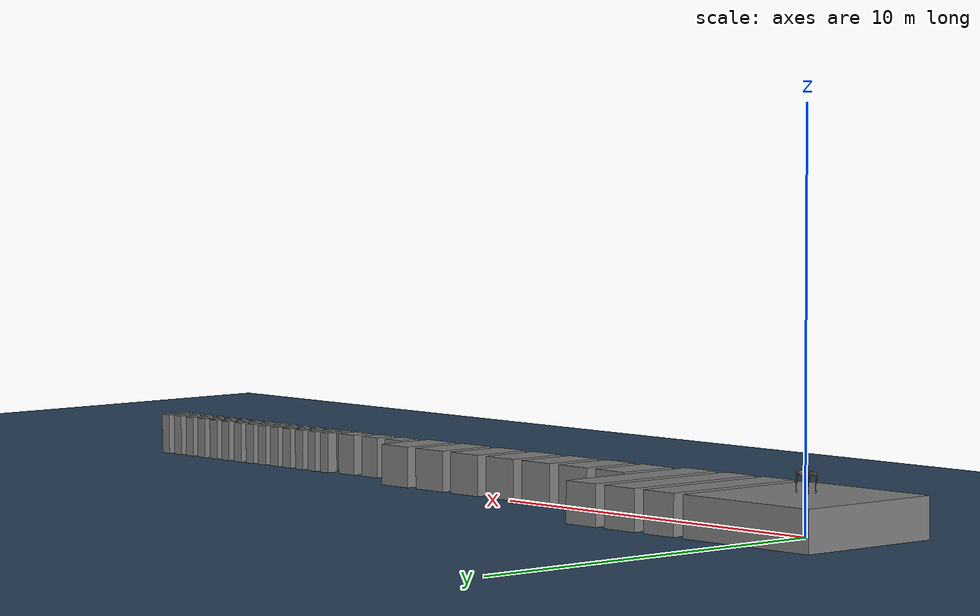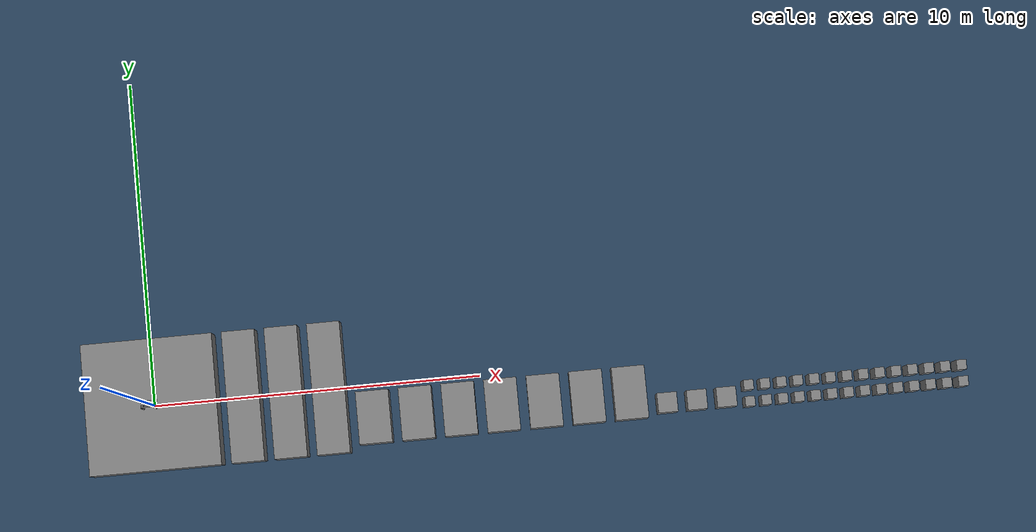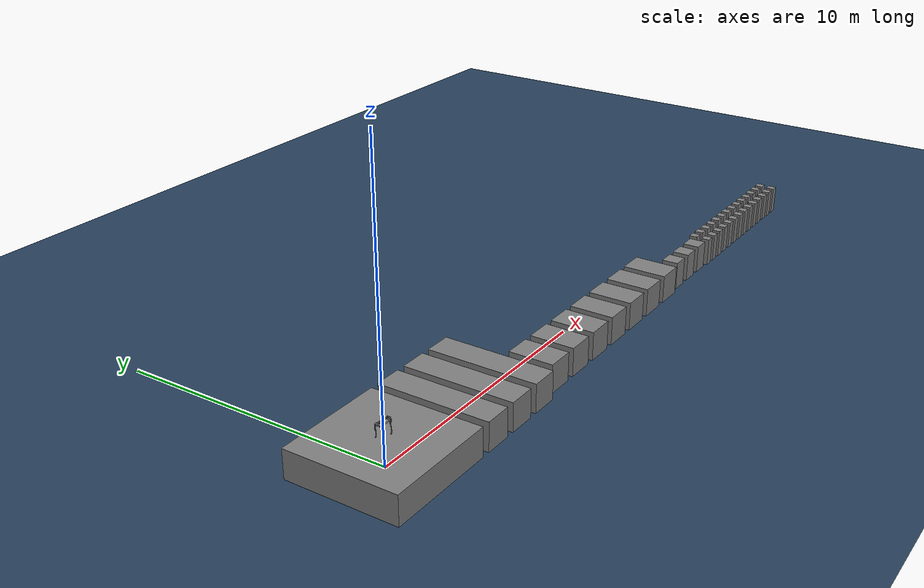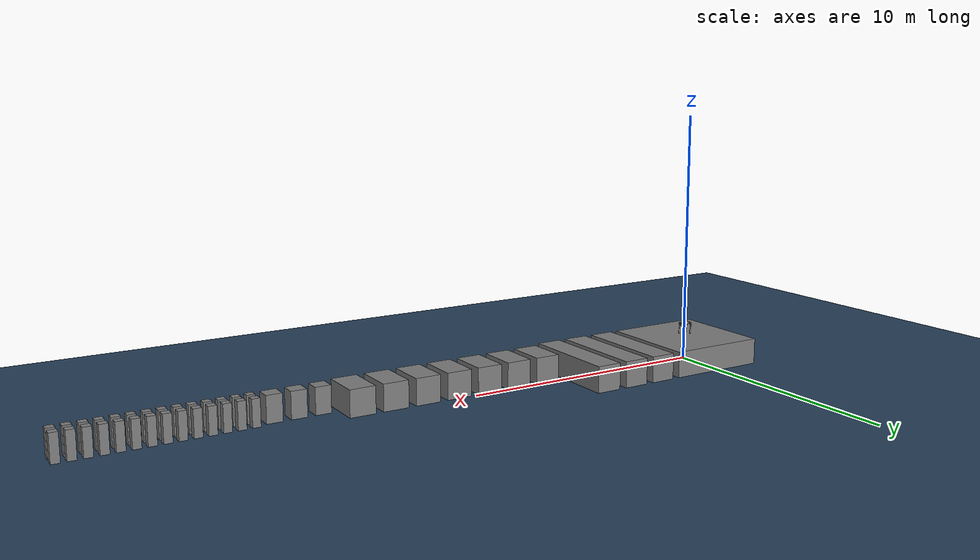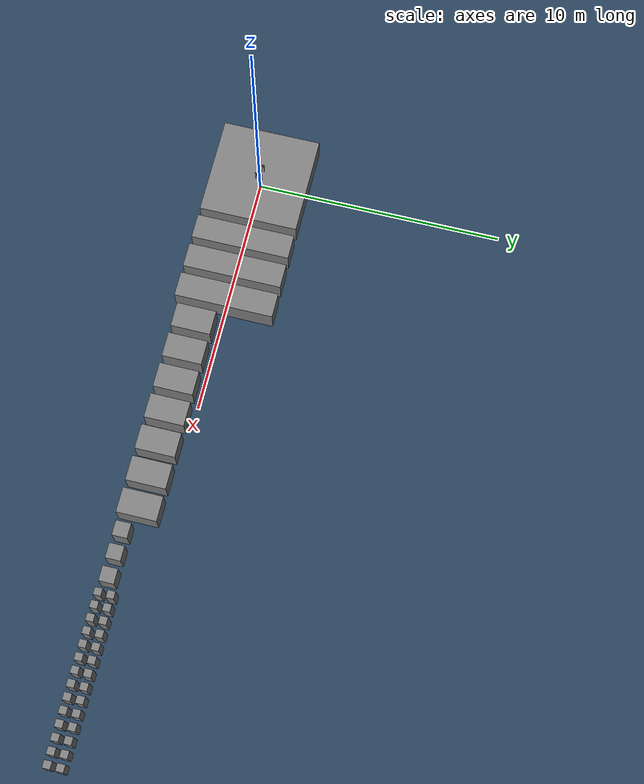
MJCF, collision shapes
<mujoco model="go1 scene">
  <include file="go1.xml" />

  <statistic center="0 0 0.1" extent="0.8" />

  <visual>
    <headlight diffuse="0.6 0.6 0.6" ambient="0.3 0.3 0.3" specular="0 0 0" />
    <rgba haze="0.15 0.25 0.35 1" />
    <global azimuth="-130" elevation="-20" />
  </visual>

  <asset>
    <texture type="skybox" builtin="gradient" rgb1="0.3 0.5 0.7" rgb2="0 0 0" width="512" height="3072" />
    <texture type="2d" name="groundplane" builtin="checker" mark="edge" rgb1="0.2 0.3 0.4" rgb2="0.1 0.2 0.3" markrgb="0.8 0.8 0.8" width="300" height="300" />
    <material name="groundplane" texture="groundplane" texuniform="true" texrepeat="5 5" reflectance="0.2" />
  <hfield name="perlin_hfield" size="5.0 5.0 0.6 0.6" file="../height_field.png" />
  <hfield name="image_hfield" size="1.0 1.0 0.02 0.1" file="../unitree_hfield.png" /></asset>

  <worldbody>
    <light pos="0 0 1.5" dir="0 0 -1" directional="true" />
    <geom name="floor" size="0 0 0.05" type="plane" material="groundplane" />
    <geom pos="0.0 0.0 0.0" type="box" size="2.0 2.0 1.0" quat="1.0 0.0 0.0 0.0" />
    <geom pos="2.8 0.0 0.0" type="box" size="0.5 2.0 1.0" quat="1.0 0.0 0.0 0.0" />
    <geom pos="4.1 0.0 0.0" type="box" size="0.5 2.0 1.0" quat="1.0 0.0 0.0 0.0" />
    <geom pos="5.4 0.0 0.0" type="box" size="0.5 2.0 1.0" quat="1.0 0.0 0.0 0.0" />
    <geom pos="6.7 -1.0 0.0" type="box" size="0.5 0.8 1.0" quat="1.0 0.0 0.0 0.0" />
    <geom pos="8.0 -1.0 0.0" type="box" size="0.5 0.8 1.0" quat="1.0 0.0 0.0 0.0" />
    <geom pos="9.3 -1.0 0.0" type="box" size="0.5 0.8 1.0" quat="1.0 0.0 0.0 0.0" />
    <geom pos="10.6 -1.0 0.0" type="box" size="0.5 0.8 1.0" quat="1.0 0.0 0.0 0.0" />
    <geom pos="11.9 -1.0 0.0" type="box" size="0.5 0.8 1.0" quat="1.0 0.0 0.0 0.0" />
    <geom pos="13.2 -1.0 0.0" type="box" size="0.5 0.8 1.0" quat="1.0 0.0 0.0 0.0" />
    <geom pos="14.5 -1.0 0.0" type="box" size="0.5 0.8 1.0" quat="1.0 0.0 0.0 0.0" />
    <geom pos="15.6 -1.4 0.0" type="box" size="0.3 0.3 1.0" quat="1.0 0.0 0.0 0.0" />
    <geom pos="16.5 -1.4 0.0" type="box" size="0.3 0.3 1.0" quat="1.0 0.0 0.0 0.0" />
    <geom pos="17.4 -1.4 0.0" type="box" size="0.3 0.3 1.0" quat="1.0 0.0 0.0 0.0" />
    <geom pos="18.1 -1.1 0.0" type="box" size="0.15 0.15 1.0" quat="1.0 0.0 0.0 0.0" />
    <geom pos="18.1 -1.6 0.0" type="box" size="0.15 0.15 1.0" quat="1.0 0.0 0.0 0.0" />
    <geom pos="18.6 -1.1 0.0" type="box" size="0.15 0.15 1.0" quat="1.0 0.0 0.0 0.0" />
    <geom pos="18.6 -1.6 0.0" type="box" size="0.15 0.15 1.0" quat="1.0 0.0 0.0 0.0" />
    <geom pos="19.1 -1.1 0.0" type="box" size="0.15 0.15 1.0" quat="1.0 0.0 0.0 0.0" />
    <geom pos="19.1 -1.6 0.0" type="box" size="0.15 0.15 1.0" quat="1.0 0.0 0.0 0.0" />
    <geom pos="19.6 -1.1 0.0" type="box" size="0.15 0.15 1.0" quat="1.0 0.0 0.0 0.0" />
    <geom pos="19.6 -1.6 0.0" type="box" size="0.15 0.15 1.0" quat="1.0 0.0 0.0 0.0" />
    <geom pos="20.1 -1.1 0.0" type="box" size="0.15 0.15 1.0" quat="1.0 0.0 0.0 0.0" />
    <geom pos="20.1 -1.6 0.0" type="box" size="0.15 0.15 1.0" quat="1.0 0.0 0.0 0.0" />
    <geom pos="20.6 -1.1 0.0" type="box" size="0.15 0.15 1.0" quat="1.0 0.0 0.0 0.0" />
    <geom pos="20.6 -1.6 0.0" type="box" size="0.15 0.15 1.0" quat="1.0 0.0 0.0 0.0" />
    <geom pos="21.1 -1.1 0.0" type="box" size="0.15 0.15 1.0" quat="1.0 0.0 0.0 0.0" />
    <geom pos="21.1 -1.6 0.0" type="box" size="0.15 0.15 1.0" quat="1.0 0.0 0.0 0.0" />
    <geom pos="21.6 -1.1 0.0" type="box" size="0.15 0.15 1.0" quat="1.0 0.0 0.0 0.0" />
    <geom pos="21.6 -1.6 0.0" type="box" size="0.15 0.15 1.0" quat="1.0 0.0 0.0 0.0" />
    <geom pos="22.1 -1.1 0.0" type="box" size="0.15 0.15 1.0" quat="1.0 0.0 0.0 0.0" />
    <geom pos="22.1 -1.6 0.0" type="box" size="0.15 0.15 1.0" quat="1.0 0.0 0.0 0.0" />
    <geom pos="22.6 -1.1 0.0" type="box" size="0.15 0.15 1.0" quat="1.0 0.0 0.0 0.0" />
    <geom pos="22.6 -1.6 0.0" type="box" size="0.15 0.15 1.0" quat="1.0 0.0 0.0 0.0" />
    <geom pos="23.1 -1.1 0.0" type="box" size="0.15 0.15 1.0" quat="1.0 0.0 0.0 0.0" />
    <geom pos="23.1 -1.6 0.0" type="box" size="0.15 0.15 1.0" quat="1.0 0.0 0.0 0.0" />
    <geom pos="23.6 -1.1 0.0" type="box" size="0.15 0.15 1.0" quat="1.0 0.0 0.0 0.0" />
    <geom pos="23.6 -1.6 0.0" type="box" size="0.15 0.15 1.0" quat="1.0 0.0 0.0 0.0" />
    <geom pos="24.1 -1.1 0.0" type="box" size="0.15 0.15 1.0" quat="1.0 0.0 0.0 0.0" />
    <geom pos="24.1 -1.6 0.0" type="box" size="0.15 0.15 1.0" quat="1.0 0.0 0.0 0.0" />
    <geom pos="24.6 -1.1 0.0" type="box" size="0.15 0.15 1.0" quat="1.0 0.0 0.0 0.0" />
    <geom pos="24.6 -1.6 0.0" type="box" size="0.15 0.15 1.0" quat="1.0 0.0 0.0 0.0" />

  </worldbody>
</mujoco>

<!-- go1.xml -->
<mujoco model="go1">
  <compiler angle="radian" meshdir="assets" autolimits="true"/>

  <option cone="elliptic" impratio="100"/>

  <extension>
    <!-- 啟用 ray caster plugin -->
    <plugin plugin="mujoco.sensor.ray_caster"/>
  </extension>

  <default>
    <default class="go1">
      <geom friction="0.4" margin="0.001" condim="1"/>
      <joint axis="0 1 0" damping="2" armature="0.01" frictionloss="0.2"/>
      <motor ctrlrange="-23.7 23.7"/>
      <default class="abduction">
        <joint axis="1 0 0" damping="1" range="-0.863 0.863"/>
      </default>
      <default class="hip">
        <joint range="-0.686 4.501"/>
      </default>
      <default class="knee">
        <joint range="-2.818 -0.888"/>
        <motor ctrlrange="-45.43 45.43"/>
      </default>
      <default class="visual">
        <geom type="mesh" contype="0" conaffinity="0" group="2" material="dark"/>
      </default>
      <default class="collision">
        <geom group="3" type="capsule"/>
        <default class="hip_left1">
          <geom size="0.046 0.02" pos="0 0.045 0" quat="1 1 0 0" type="cylinder"/>
        </default>
        <default class="hip_left2">
          <geom size="0.031 0.02" pos="0 0.065 0" quat="1 1 0 0" type="cylinder"/>
        </default>
        <default class="hip_left3">
          <geom size="0.046 0.02" quat="1 1 0 0" type="cylinder"/>
        </default>
        <default class="hip_right1">
          <geom size="0.046 0.02" pos="0 -0.045 0" quat="1 1 0 0" type="cylinder"/>
        </default>
        <default class="hip_right2">
          <geom size="0.031 0.02" pos="0 -0.065 0" quat="1 1 0 0" type="cylinder"/>
        </default>
        <default class="hip_right3">
          <geom size="0.046 0.02" quat="1 1 0 0" type="cylinder"/>
        </default>
        <default class="thigh1">
          <geom size="0.015" fromto="-0.02 0 0 -0.02 0 -0.16"/>
        </default>
        <default class="thigh2">
          <geom size="0.015" fromto="0 0 0 -0.02 0 -0.1"/>
        </default>
        <default class="thigh3">
          <geom size="0.015" fromto="-0.02 0 -0.16 0 0 -0.2"/>
        </default>
        <default class="calf1">
          <geom size="0.01" fromto="0 0 0 0.02 0 -0.13"/>
        </default>
        <default class="calf2">
          <geom size="0.01" fromto="0.02 0 -0.13 0 0 -0.2"/>
        </default>
        <default class="foot">
          <geom type="sphere" size="0.023" pos="0 0 -0.213" priority="1" condim="6"
            friction="0.4 0.02 0.01"/>
        </default>
      </default>
    </default>
  </default>

  <asset>
    <material name="dark" rgba="0.2 0.2 0.2 1"/>
    <mesh class="go1" file="trunk.stl"/>
    <mesh class="go1" file="hip.stl"/>
    <mesh class="go1" file="thigh_mirror.stl"/>
    <mesh class="go1" file="calf.stl"/>
    <mesh class="go1" file="thigh.stl"/>
  </asset>

  <worldbody>
    <body name="base_link" pos="0 0 1.5" childclass="go1">
      <camera name="tracking" mode="trackcom" pos="0 -1 0.8" xyaxes="1 0 0 0 1 1"/>
      <site name="head" pos="0.3 0 0" rgba="1 0 0 1" size="0.02" group="5"/>
      <inertial pos="0.0223 0.002 -0.0005" quat="-0.00342088 0.705204 0.000106698 0.708996" mass="5.204"
        diaginertia="0.0716565 0.0630105 0.0168101"/>
      <freejoint/>
      <geom class="visual" mesh="trunk"/>
      <geom class="collision" size="0.125 0.04 0.057" type="box"/>
      <geom class="collision" quat="1 0 1 0" pos="0 -0.04 0" size="0.058 0.125" type="cylinder"/>
      <geom class="collision" quat="1 0 1 0" pos="0 +0.04 0" size="0.058 0.125" type="cylinder"/>
      <geom class="collision" pos="0.25 0 0" size="0.005 0.06 0.05" type="box"/>
      <geom class="collision" pos="0.25 0.06 -0.01" size="0.009 0.035"/>
      <geom class="collision" pos="0.25 -0.06 -0.01" size="0.009 0.035"/>
      <geom class="collision" pos="0.25 0 -0.05" size="0.01 0.06" quat="1 1 0 0"/>
      <geom class="collision" pos="0.255 0 0.0355" size="0.021 0.052" quat="1 1 0 0"/>
      <camera name="height_cam" pos="0 0 0" quat="1 0 0 0"/>
      <site name="imu" pos="0 0 0"/>
      <body name="FR_hip" pos="0.1881 -0.04675 0">
        <inertial pos="-0.0049166 0.00762615 -8.865e-05" quat="0.507341 0.514169 0.495027 0.482891" mass="0.68"
          diaginertia="0.000734064 0.000468438 0.000398719"/>
        <joint class="abduction" name="FR_hip_joint"/>
        <geom class="visual" mesh="hip" quat="1 0 0 0"/>
        <geom class="hip_right1"/>
        <geom class="hip_right2"/>
        <body name="FR_thigh" pos="0 -0.08 0">
          <inertial pos="-0.00304722 0.019315 -0.0305004" quat="0.65243 -0.0272313 0.0775126 0.753383" mass="1.009"
            diaginertia="0.00478717 0.00460903 0.000709268"/>
          <joint class="hip" name="FR_thigh_joint"/>
          <geom class="visual" mesh="thigh_mirror"/>
          <geom class="thigh1"/>
          <geom class="thigh2"/>
          <geom class="thigh3"/>
          <body name="FR_calf" pos="0 0 -0.213">
            <inertial pos="0.00429862 0.000976676 -0.146197" quat="0.691246 0.00357467 0.00511118 0.722592"
              mass="0.195862" diaginertia="0.00149767 0.00148468 3.58427e-05"/>
            <joint class="knee" name="FR_calf_joint"/>
            <geom class="visual" mesh="calf"/>
            <geom class="calf1"/>
            <geom class="calf2"/>
            <geom name="FR" class="foot"/>
            <site name="FR" pos="0 0 -0.213" type="sphere" size="0.023" group="5"/>
          </body>
        </body>
      </body>
      <body name="FL_hip" pos="0.1881 0.04675 0">
        <inertial pos="-0.0049166 -0.00762615 -8.865e-05" quat="0.482891 0.495027 0.514169 0.507341" mass="0.68"
          diaginertia="0.000734064 0.000468438 0.000398719"/>
        <joint class="abduction" name="FL_hip_joint"/>
        <geom class="visual" mesh="hip"/>
        <geom class="hip_left1"/>
        <geom class="hip_left2"/>
        <body name="FL_thigh" pos="0 0.08 0">
          <inertial pos="-0.00304722 -0.019315 -0.0305004" quat="0.753383 0.0775126 -0.0272313 0.65243" mass="1.009"
            diaginertia="0.00478717 0.00460903 0.000709268"/>
          <joint class="hip" name="FL_thigh_joint"/>
          <geom class="visual" mesh="thigh"/>
          <geom class="thigh1"/>
          <geom class="thigh2"/>
          <geom class="thigh3"/>
          <body name="FL_calf" pos="0 0 -0.213">
            <inertial pos="0.00429862 0.000976676 -0.146197" quat="0.691246 0.00357467 0.00511118 0.722592"
              mass="0.195862" diaginertia="0.00149767 0.00148468 3.58427e-05"/>
            <joint class="knee" name="FL_calf_joint"/>
            <geom class="visual" mesh="calf"/>
            <geom class="calf1"/>
            <geom class="calf2"/>
            <geom name="FL" class="foot"/>
            <site name="FL" pos="0 0 -0.213" type="sphere" size="0.023" group="5"/>
          </body>
        </body>
      </body>
      <body name="RR_hip" pos="-0.1881 -0.04675 0">
        <inertial pos="0.0049166 0.00762615 -8.865e-05" quat="0.495027 0.482891 0.507341 0.514169" mass="0.68"
          diaginertia="0.000734064 0.000468438 0.000398719"/>
        <joint class="abduction" name="RR_hip_joint"/>
        <geom class="visual" quat="0 0 0 -1" mesh="hip"/>
        <geom class="hip_right1"/>
        <geom class="hip_right2"/>
        <geom class="hip_right3"/>
        <body name="RR_thigh" pos="0 -0.08 0">
          <inertial pos="-0.00304722 0.019315 -0.0305004" quat="0.65243 -0.0272313 0.0775126 0.753383" mass="1.009"
            diaginertia="0.00478717 0.00460903 0.000709268"/>
          <joint class="hip" name="RR_thigh_joint"/>
          <geom class="visual" mesh="thigh_mirror"/>
          <geom class="thigh1"/>
          <geom class="thigh2"/>
          <geom class="thigh3"/>
          <body name="RR_calf" pos="0 0 -0.213">
            <inertial pos="0.00429862 0.000976676 -0.146197" quat="0.691246 0.00357467 0.00511118 0.722592"
              mass="0.195862" diaginertia="0.00149767 0.00148468 3.58427e-05"/>
            <joint class="knee" name="RR_calf_joint"/>
            <geom class="visual" mesh="calf"/>
            <geom class="calf1"/>
            <geom class="calf2"/>
            <geom name="RR" class="foot"/>
            <site name="RR" pos="0 0 -0.213" type="sphere" size="0.023" group="5"/>
          </body>
        </body>
      </body>
      <body name="RL_hip" pos="-0.1881 0.04675 0">
        <inertial pos="0.0049166 -0.00762615 -8.865e-05" quat="0.514169 0.507341 0.482891 0.495027" mass="0.68"
          diaginertia="0.000734064 0.000468438 0.000398719"/>
        <joint class="abduction" name="RL_hip_joint"/>
        <geom class="visual" quat="0 0 1 0" mesh="hip"/>
        <geom class="hip_left1"/>
        <geom class="hip_left2"/>
        <geom class="hip_left3"/>
        <body name="RL_thigh" pos="0 0.08 0">
          <inertial pos="-0.00304722 -0.019315 -0.0305004" quat="0.753383 0.0775126 -0.0272313 0.65243" mass="1.009"
            diaginertia="0.00478717 0.00460903 0.000709268"/>
          <joint class="hip" name="RL_thigh_joint"/>
          <geom class="visual" mesh="thigh"/>
          <geom class="thigh1"/>
          <geom class="thigh2"/>
          <geom class="thigh3"/>
          <body name="RL_calf" pos="0 0 -0.213">
            <inertial pos="0.00429862 0.000976676 -0.146197" quat="0.691246 0.00357467 0.00511118 0.722592"
              mass="0.195862" diaginertia="0.00149767 0.00148468 3.58427e-05"/>
            <joint class="knee" name="RL_calf_joint"/>
            <geom class="visual" mesh="calf"/>
            <geom class="calf1"/>
            <geom class="calf2"/>
            <geom name="RL" class="foot"/>
            <site name="RL" pos="0 0 -0.213" type="sphere" size="0.023" group="5"/>
          </body>
        </body>
      </body>
    </body>
  </worldbody>

  <actuator>
  <motor class="abduction" name="FR_hip" joint="FR_hip_joint"/>
  <motor class="hip" name="FR_thigh" joint="FR_thigh_joint"/>
  <motor class="knee" name="FR_calf" joint="FR_calf_joint"/>
  <motor class="abduction" name="FL_hip" joint="FL_hip_joint"/>
  <motor class="hip" name="FL_thigh" joint="FL_thigh_joint"/>
  <motor class="knee" name="FL_calf" joint="FL_calf_joint"/>
  <motor class="abduction" name="RR_hip" joint="RR_hip_joint"/>
  <motor class="hip" name="RR_thigh" joint="RR_thigh_joint"/>
  <motor class="knee" name="RR_calf" joint="RR_calf_joint"/>
  <motor class="abduction" name="RL_hip" joint="RL_hip_joint"/>
  <motor class="hip" name="RL_thigh" joint="RL_thigh_joint"/>
  <motor class="knee" name="RL_calf" joint="RL_calf_joint"/>
  </actuator>

  <sensor>
  <!-- joint pos -->
  <jointpos name="FR_hip_pos" joint="FR_hip_joint" />
  <jointpos name="FR_thigh_pos" joint="FR_thigh_joint" />
  <jointpos name="FR_calf_pos" joint="FR_calf_joint" />
  <jointpos name="FL_hip_pos" joint="FL_hip_joint" />
  <jointpos name="FL_thigh_pos" joint="FL_thigh_joint" />
  <jointpos name="FL_calf_pos" joint="FL_calf_joint" />
  <jointpos name="RR_hip_pos" joint="RR_hip_joint" />
  <jointpos name="RR_thigh_pos" joint="RR_thigh_joint" />
  <jointpos name="RR_calf_pos" joint="RR_calf_joint" />
  <jointpos name="RL_hip_pos" joint="RL_hip_joint" />
  <jointpos name="RL_thigh_pos" joint="RL_thigh_joint" />
  <jointpos name="RL_calf_pos" joint="RL_calf_joint" />

  <!-- joint vel -->
  <jointvel name="FR_hip_vel" joint="FR_hip_joint" />
  <jointvel name="FR_thigh_vel" joint="FR_thigh_joint" />
  <jointvel name="FR_calf_vel" joint="FR_calf_joint" />
  <jointvel name="FL_hip_vel" joint="FL_hip_joint" />
  <jointvel name="FL_thigh_vel" joint="FL_thigh_joint" />
  <jointvel name="FL_calf_vel" joint="FL_calf_joint" />
  <jointvel name="RR_hip_vel" joint="RR_hip_joint" />
  <jointvel name="RR_thigh_vel" joint="RR_thigh_joint" />
  <jointvel name="RR_calf_vel" joint="RR_calf_joint" />
  <jointvel name="RL_hip_vel" joint="RL_hip_joint" />
  <jointvel name="RL_thigh_vel" joint="RL_thigh_joint" />
  <jointvel name="RL_calf_vel" joint="RL_calf_joint" />

  <!-- actuator force/torque (建議綁 actuator 名稱，不要綁 joint) -->
  <actuatorfrc name="FR_hip_torque" actuator="FR_hip" noise="0.01" />
  <actuatorfrc name="FR_thigh_torque" actuator="FR_thigh" noise="0.01" />
  <actuatorfrc name="FR_calf_torque" actuator="FR_calf" noise="0.01" />
  <actuatorfrc name="FL_hip_torque" actuator="FL_hip" noise="0.01" />
  <actuatorfrc name="FL_thigh_torque" actuator="FL_thigh" noise="0.01" />
  <actuatorfrc name="FL_calf_torque" actuator="FL_calf" noise="0.01" />
  <actuatorfrc name="RR_hip_torque" actuator="RR_hip" noise="0.01" />
  <actuatorfrc name="RR_thigh_torque" actuator="RR_thigh" noise="0.01" />
  <actuatorfrc name="RR_calf_torque" actuator="RR_calf" noise="0.01" />
  <actuatorfrc name="RL_hip_torque" actuator="RL_hip" noise="0.01" />
  <actuatorfrc name="RL_thigh_torque" actuator="RL_thigh" noise="0.01" />
  <actuatorfrc name="RL_calf_torque" actuator="RL_calf" noise="0.01" />

  <!-- IMU：姿態用 trunk body 最穩；gyro/acc 用 imu site -->
  <framequat name="imu_quat" objtype="site" objname="imu" />
  <framepos  name="frame_pos" objtype="site" objname="imu" />
  <framelinvel name="frame_vel" objtype="site" objname="imu" />
  <gyro name="imu_gyro" site="imu" />
  <accelerometer name="imu_acc" site="imu" />

  <!-- height scanner plugin -->
  <plugin name="height_scanner"
          plugin="mujoco.sensor.ray_caster"
          objtype="camera" objname="height_cam">
    <config key="type" value="yaw" />
    <config key="resolution" value="0.1" />
    <config key="size" value="1.0 1.6" />
    <config key="dis_range" value="0.01 6" />
    <config key="compute_time_log" value="1" />
    <config key="draw_hip_point" value="1 0.02" />
    <config key="sensor_data_types" value="data" />
    <config key="noise_type" value="uniform" />
    <config key="noise_cfg" value="0 0 1" />
  </plugin>
</sensor>

  <keyframe>
    <key name="home"
 qpos="14.5 -1.5 1.5 1 0 0 0 0 0.9 -1.8 0 0.9 -1.8 0 0.9 -1.8 0 0.9 -1.8"
 ctrl="0 0.9 -1.8 0 0.9 -1.8 0 0.9 -1.8 0 0.9 -1.8"/>

  </keyframe>
</mujoco>
